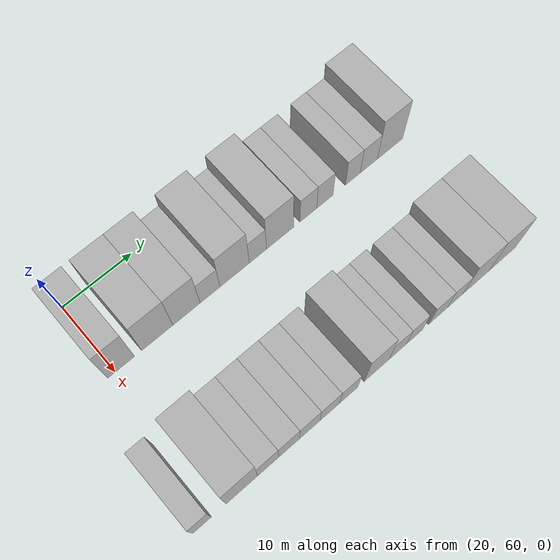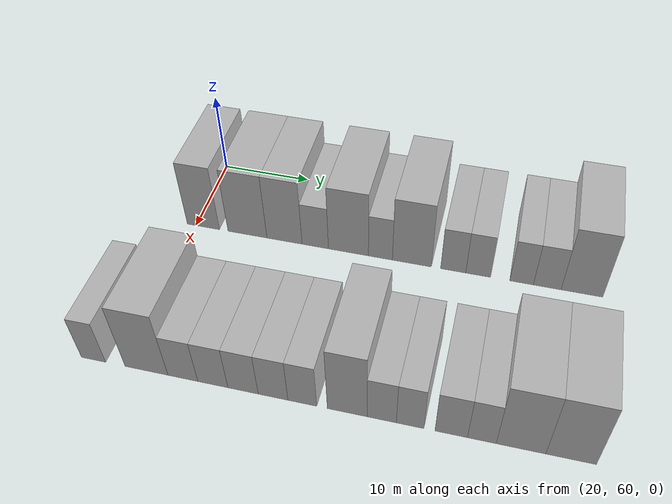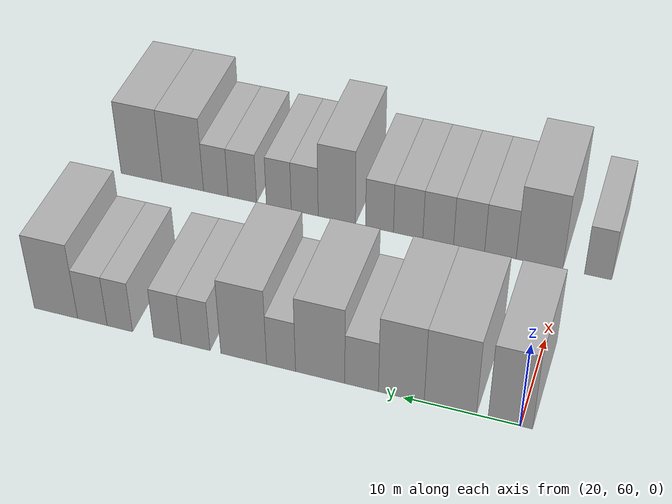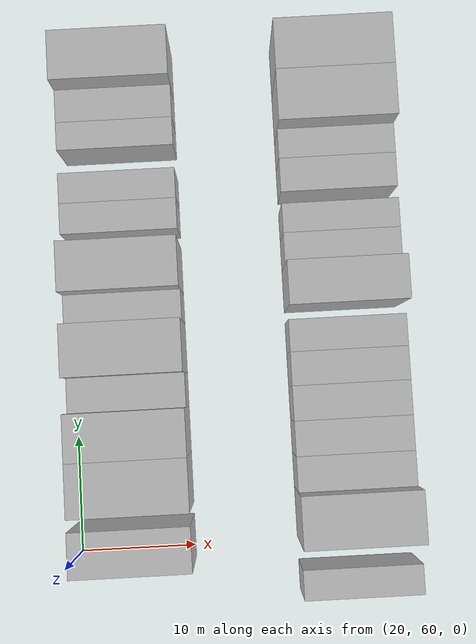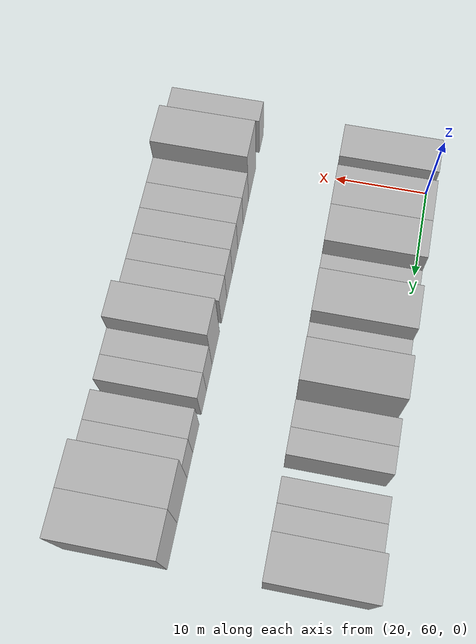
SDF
<sdf version="1.6">
 <world name="default">
  <model name="building_69">
   <static>1</static>
   <pose>25.0000 60.8629 0 0.000000 0.000000 0.000000</pose>
   <link name="link">
    <pose>0 0 4.50 0 0 0</pose>
    <collision name="collision"><geometry><box><size>10.0000 3.7578 9.0000</size></box></geometry></collision>
    <visual name="visual">
     <cast_shadows>0</cast_shadows>
     <geometry><box><size>10.0000 3.7578 9.0000</size></box></geometry>
     <material>
      <script>
       <uri>model://HANNAS_wall/materials/scripts</uri>
       <uri>model://HANNAS_wall/materials/textures</uri>
       <name>vrc/HANNAS_wall</name>
      </script>
     </material>
    </visual>
   </link>
  </model>
  <model name="building_70">
   <static>1</static>
   <pose>25.0000 65.9792 0 0.000000 0.000000 0.000000</pose>
   <link name="link">
    <pose>0 0 4.50 0 0 0</pose>
    <collision name="collision"><geometry><box><size>10.0000 4.4748 9.0000</size></box></geometry></collision>
    <visual name="visual">
     <cast_shadows>0</cast_shadows>
     <geometry><box><size>10.0000 4.4748 9.0000</size></box></geometry>
     <material>
      <script>
       <uri>model://HANNAS_wall/materials/scripts</uri>
       <uri>model://HANNAS_wall/materials/textures</uri>
       <name>vrc/HANNAS_wall</name>
      </script>
     </material>
    </visual>
   </link>
  </model>
  <model name="building_71">
   <static>1</static>
   <pose>25.0000 70.2125 0 0.000000 0.000000 0.000000</pose>
   <link name="link">
    <pose>0 0 4.50 0 0 0</pose>
    <collision name="collision"><geometry><box><size>10.0000 3.9920 9.0000</size></box></geometry></collision>
    <visual name="visual">
     <cast_shadows>0</cast_shadows>
     <geometry><box><size>10.0000 3.9920 9.0000</size></box></geometry>
     <material>
      <script>
       <uri>model://HANNAS_wall/materials/scripts</uri>
       <uri>model://HANNAS_wall/materials/textures</uri>
       <name>vrc/HANNAS_wall</name>
      </script>
     </material>
    </visual>
   </link>
  </model>
  <model name="building_72">
   <static>1</static>
   <pose>25.0000 73.6860 0 0.000000 0.000000 0.000000</pose>
   <link name="link">
    <pose>0 0 3.00 0 0 0</pose>
    <collision name="collision"><geometry><box><size>10.0000 2.9551 6.0000</size></box></geometry></collision>
    <visual name="visual">
     <cast_shadows>0</cast_shadows>
     <geometry><box><size>10.0000 2.9551 6.0000</size></box></geometry>
     <material>
      <script>
       <uri>model://HANNAS_wall/materials/scripts</uri>
       <uri>model://HANNAS_wall/materials/textures</uri>
       <name>vrc/HANNAS_wall</name>
      </script>
     </material>
    </visual>
   </link>
  </model>
  <model name="building_73">
   <static>1</static>
   <pose>25.0000 77.3715 0 0.000000 0.000000 0.000000</pose>
   <link name="link">
    <pose>0 0 4.50 0 0 0</pose>
    <collision name="collision"><geometry><box><size>10.0000 4.4159 9.0000</size></box></geometry></collision>
    <visual name="visual">
     <cast_shadows>0</cast_shadows>
     <geometry><box><size>10.0000 4.4159 9.0000</size></box></geometry>
     <material>
      <script>
       <uri>model://HANNAS_wall/materials/scripts</uri>
       <uri>model://HANNAS_wall/materials/textures</uri>
       <name>vrc/HANNAS_wall</name>
      </script>
     </material>
    </visual>
   </link>
  </model>
  <model name="building_74">
   <static>1</static>
   <pose>25.0000 80.8892 0 0.000000 0.000000 0.000000</pose>
   <link name="link">
    <pose>0 0 3.00 0 0 0</pose>
    <collision name="collision"><geometry><box><size>10.0000 2.6195 6.0000</size></box></geometry></collision>
    <visual name="visual">
     <cast_shadows>0</cast_shadows>
     <geometry><box><size>10.0000 2.6195 6.0000</size></box></geometry>
     <material>
      <script>
       <uri>model://HANNAS_wall/materials/scripts</uri>
       <uri>model://HANNAS_wall/materials/textures</uri>
       <name>vrc/HANNAS_wall</name>
      </script>
     </material>
    </visual>
   </link>
  </model>
  <model name="building_75">
   <static>1</static>
   <pose>25.0000 84.2985 0 0.000000 0.000000 0.000000</pose>
   <link name="link">
    <pose>0 0 4.50 0 0 0</pose>
    <collision name="collision"><geometry><box><size>10.0000 4.1991 9.0000</size></box></geometry></collision>
    <visual name="visual">
     <cast_shadows>0</cast_shadows>
     <geometry><box><size>10.0000 4.1991 9.0000</size></box></geometry>
     <material>
      <script>
       <uri>model://HANNAS_wall/materials/scripts</uri>
       <uri>model://HANNAS_wall/materials/textures</uri>
       <name>vrc/HANNAS_wall</name>
      </script>
     </material>
    </visual>
   </link>
  </model>
  <model name="building_76">
   <static>1</static>
   <pose>25.0000 88.7278 0 0.000000 0.000000 0.000000</pose>
   <link name="link">
    <pose>0 0 3.00 0 0 0</pose>
    <collision name="collision"><geometry><box><size>10.0000 2.6595 6.0000</size></box></geometry></collision>
    <visual name="visual">
     <cast_shadows>0</cast_shadows>
     <geometry><box><size>10.0000 2.6595 6.0000</size></box></geometry>
     <material>
      <script>
       <uri>model://HANNAS_wall/materials/scripts</uri>
       <uri>model://HANNAS_wall/materials/textures</uri>
       <name>vrc/HANNAS_wall</name>
      </script>
     </material>
    </visual>
   </link>
  </model>
  <model name="building_77">
   <static>1</static>
   <pose>25.0000 91.3631 0 0.000000 0.000000 0.000000</pose>
   <link name="link">
    <pose>0 0 3.00 0 0 0</pose>
    <collision name="collision"><geometry><box><size>10.0000 2.6112 6.0000</size></box></geometry></collision>
    <visual name="visual">
     <cast_shadows>0</cast_shadows>
     <geometry><box><size>10.0000 2.6112 6.0000</size></box></geometry>
     <material>
      <script>
       <uri>model://HANNAS_wall/materials/scripts</uri>
       <uri>model://HANNAS_wall/materials/textures</uri>
       <name>vrc/HANNAS_wall</name>
      </script>
     </material>
    </visual>
   </link>
  </model>
  <model name="building_78">
   <static>1</static>
   <pose>25.0000 95.8824 0 0.000000 0.000000 0.000000</pose>
   <link name="link">
    <pose>0 0 3.00 0 0 0</pose>
    <collision name="collision"><geometry><box><size>10.0000 2.4275 6.0000</size></box></geometry></collision>
    <visual name="visual">
     <cast_shadows>0</cast_shadows>
     <geometry><box><size>10.0000 2.4275 6.0000</size></box></geometry>
     <material>
      <script>
       <uri>model://HANNAS_wall/materials/scripts</uri>
       <uri>model://HANNAS_wall/materials/textures</uri>
       <name>vrc/HANNAS_wall</name>
      </script>
     </material>
    </visual>
   </link>
  </model>
  <model name="building_79">
   <static>1</static>
   <pose>25.0000 98.5160 0 0.000000 0.000000 0.000000</pose>
   <link name="link">
    <pose>0 0 3.00 0 0 0</pose>
    <collision name="collision"><geometry><box><size>10.0000 2.8397 6.0000</size></box></geometry></collision>
    <visual name="visual">
     <cast_shadows>0</cast_shadows>
     <geometry><box><size>10.0000 2.8397 6.0000</size></box></geometry>
     <material>
      <script>
       <uri>model://HANNAS_wall/materials/scripts</uri>
       <uri>model://HANNAS_wall/materials/textures</uri>
       <name>vrc/HANNAS_wall</name>
      </script>
     </material>
    </visual>
   </link>
  </model>
  <model name="building_80">
   <static>1</static>
   <pose>25.0000 102.0439 0 0.000000 0.000000 0.000000</pose>
   <link name="link">
    <pose>0 0 4.50 0 0 0</pose>
    <collision name="collision"><geometry><box><size>10.0000 4.2161 9.0000</size></box></geometry></collision>
    <visual name="visual">
     <cast_shadows>0</cast_shadows>
     <geometry><box><size>10.0000 4.2161 9.0000</size></box></geometry>
     <material>
      <script>
       <uri>model://HANNAS_wall/materials/scripts</uri>
       <uri>model://HANNAS_wall/materials/textures</uri>
       <name>vrc/HANNAS_wall</name>
      </script>
     </material>
    </visual>
   </link>
  </model>
  <model name="building_168">
   <static>1</static>
   <pose>44.0000 57.0009 0 0.000000 0.000000 0.000000</pose>
   <link name="link">
    <pose>0 0 3.00 0 0 0</pose>
    <collision name="collision"><geometry><box><size>10.0000 2.5033 6.0000</size></box></geometry></collision>
    <visual name="visual">
     <cast_shadows>0</cast_shadows>
     <geometry><box><size>10.0000 2.5033 6.0000</size></box></geometry>
     <material>
      <script>
       <uri>model://HANNAS_wall/materials/scripts</uri>
       <uri>model://HANNAS_wall/materials/textures</uri>
       <name>vrc/HANNAS_wall</name>
      </script>
     </material>
    </visual>
   </link>
  </model>
  <model name="building_169">
   <static>1</static>
   <pose>44.0000 62.4350 0 0.000000 0.000000 0.000000</pose>
   <link name="link">
    <pose>0 0 4.50 0 0 0</pose>
    <collision name="collision"><geometry><box><size>10.0000 4.3649 9.0000</size></box></geometry></collision>
    <visual name="visual">
     <cast_shadows>0</cast_shadows>
     <geometry><box><size>10.0000 4.3649 9.0000</size></box></geometry>
     <material>
      <script>
       <uri>model://HANNAS_wall/materials/scripts</uri>
       <uri>model://HANNAS_wall/materials/textures</uri>
       <name>vrc/HANNAS_wall</name>
      </script>
     </material>
    </visual>
   </link>
  </model>
  <model name="building_170">
   <static>1</static>
   <pose>44.0000 66.1086 0 0.000000 0.000000 0.000000</pose>
   <link name="link">
    <pose>0 0 3.00 0 0 0</pose>
    <collision name="collision"><geometry><box><size>10.0000 2.9822 6.0000</size></box></geometry></collision>
    <visual name="visual">
     <cast_shadows>0</cast_shadows>
     <geometry><box><size>10.0000 2.9822 6.0000</size></box></geometry>
     <material>
      <script>
       <uri>model://HANNAS_wall/materials/scripts</uri>
       <uri>model://HANNAS_wall/materials/textures</uri>
       <name>vrc/HANNAS_wall</name>
      </script>
     </material>
    </visual>
   </link>
  </model>
  <model name="building_171">
   <static>1</static>
   <pose>44.0000 69.0814 0 0.000000 0.000000 0.000000</pose>
   <link name="link">
    <pose>0 0 3.00 0 0 0</pose>
    <collision name="collision"><geometry><box><size>10.0000 2.9635 6.0000</size></box></geometry></collision>
    <visual name="visual">
     <cast_shadows>0</cast_shadows>
     <geometry><box><size>10.0000 2.9635 6.0000</size></box></geometry>
     <material>
      <script>
       <uri>model://HANNAS_wall/materials/scripts</uri>
       <uri>model://HANNAS_wall/materials/textures</uri>
       <name>vrc/HANNAS_wall</name>
      </script>
     </material>
    </visual>
   </link>
  </model>
  <model name="building_172">
   <static>1</static>
   <pose>44.0000 72.0394 0 0.000000 0.000000 0.000000</pose>
   <link name="link">
    <pose>0 0 3.00 0 0 0</pose>
    <collision name="collision"><geometry><box><size>10.0000 2.9525 6.0000</size></box></geometry></collision>
    <visual name="visual">
     <cast_shadows>0</cast_shadows>
     <geometry><box><size>10.0000 2.9525 6.0000</size></box></geometry>
     <material>
      <script>
       <uri>model://HANNAS_wall/materials/scripts</uri>
       <uri>model://HANNAS_wall/materials/textures</uri>
       <name>vrc/HANNAS_wall</name>
      </script>
     </material>
    </visual>
   </link>
  </model>
  <model name="building_173">
   <static>1</static>
   <pose>44.0000 74.9483 0 0.000000 0.000000 0.000000</pose>
   <link name="link">
    <pose>0 0 3.00 0 0 0</pose>
    <collision name="collision"><geometry><box><size>10.0000 2.8652 6.0000</size></box></geometry></collision>
    <visual name="visual">
     <cast_shadows>0</cast_shadows>
     <geometry><box><size>10.0000 2.8652 6.0000</size></box></geometry>
     <material>
      <script>
       <uri>model://HANNAS_wall/materials/scripts</uri>
       <uri>model://HANNAS_wall/materials/textures</uri>
       <name>vrc/HANNAS_wall</name>
      </script>
     </material>
    </visual>
   </link>
  </model>
  <model name="building_174">
   <static>1</static>
   <pose>44.0000 77.7513 0 0.000000 0.000000 0.000000</pose>
   <link name="link">
    <pose>0 0 3.00 0 0 0</pose>
    <collision name="collision"><geometry><box><size>10.0000 2.7409 6.0000</size></box></geometry></collision>
    <visual name="visual">
     <cast_shadows>0</cast_shadows>
     <geometry><box><size>10.0000 2.7409 6.0000</size></box></geometry>
     <material>
      <script>
       <uri>model://HANNAS_wall/materials/scripts</uri>
       <uri>model://HANNAS_wall/materials/textures</uri>
       <name>vrc/HANNAS_wall</name>
      </script>
     </material>
    </visual>
   </link>
  </model>
  <model name="building_175">
   <static>1</static>
   <pose>44.0000 81.9737 0 0.000000 0.000000 0.000000</pose>
   <link name="link">
    <pose>0 0 4.50 0 0 0</pose>
    <collision name="collision"><geometry><box><size>10.0000 3.7039 9.0000</size></box></geometry></collision>
    <visual name="visual">
     <cast_shadows>0</cast_shadows>
     <geometry><box><size>10.0000 3.7039 9.0000</size></box></geometry>
     <material>
      <script>
       <uri>model://HANNAS_wall/materials/scripts</uri>
       <uri>model://HANNAS_wall/materials/textures</uri>
       <name>vrc/HANNAS_wall</name>
      </script>
     </material>
    </visual>
   </link>
  </model>
  <model name="building_176">
   <static>1</static>
   <pose>44.0000 85.1796 0 0.000000 0.000000 0.000000</pose>
   <link name="link">
    <pose>0 0 3.00 0 0 0</pose>
    <collision name="collision"><geometry><box><size>10.0000 2.7078 6.0000</size></box></geometry></collision>
    <visual name="visual">
     <cast_shadows>0</cast_shadows>
     <geometry><box><size>10.0000 2.7078 6.0000</size></box></geometry>
     <material>
      <script>
       <uri>model://HANNAS_wall/materials/scripts</uri>
       <uri>model://HANNAS_wall/materials/textures</uri>
       <name>vrc/HANNAS_wall</name>
      </script>
     </material>
    </visual>
   </link>
  </model>
  <model name="building_177">
   <static>1</static>
   <pose>44.0000 87.7917 0 0.000000 0.000000 0.000000</pose>
   <link name="link">
    <pose>0 0 3.00 0 0 0</pose>
    <collision name="collision"><geometry><box><size>10.0000 2.5165 6.0000</size></box></geometry></collision>
    <visual name="visual">
     <cast_shadows>0</cast_shadows>
     <geometry><box><size>10.0000 2.5165 6.0000</size></box></geometry>
     <material>
      <script>
       <uri>model://HANNAS_wall/materials/scripts</uri>
       <uri>model://HANNAS_wall/materials/textures</uri>
       <name>vrc/HANNAS_wall</name>
      </script>
     </material>
    </visual>
   </link>
  </model>
  <model name="building_178">
   <static>1</static>
   <pose>44.0000 91.5091 0 0.000000 0.000000 0.000000</pose>
   <link name="link">
    <pose>0 0 3.00 0 0 0</pose>
    <collision name="collision"><geometry><box><size>10.0000 2.9184 6.0000</size></box></geometry></collision>
    <visual name="visual">
     <cast_shadows>0</cast_shadows>
     <geometry><box><size>10.0000 2.9184 6.0000</size></box></geometry>
     <material>
      <script>
       <uri>model://HANNAS_wall/materials/scripts</uri>
       <uri>model://HANNAS_wall/materials/textures</uri>
       <name>vrc/HANNAS_wall</name>
      </script>
     </material>
    </visual>
   </link>
  </model>
  <model name="building_179">
   <static>1</static>
   <pose>44.0000 94.2416 0 0.000000 0.000000 0.000000</pose>
   <link name="link">
    <pose>0 0 3.00 0 0 0</pose>
    <collision name="collision"><geometry><box><size>10.0000 2.5466 6.0000</size></box></geometry></collision>
    <visual name="visual">
     <cast_shadows>0</cast_shadows>
     <geometry><box><size>10.0000 2.5466 6.0000</size></box></geometry>
     <material>
      <script>
       <uri>model://HANNAS_wall/materials/scripts</uri>
       <uri>model://HANNAS_wall/materials/textures</uri>
       <name>vrc/HANNAS_wall</name>
      </script>
     </material>
    </visual>
   </link>
  </model>
  <model name="building_180">
   <static>1</static>
   <pose>44.0000 97.6808 0 0.000000 0.000000 0.000000</pose>
   <link name="link">
    <pose>0 0 4.50 0 0 0</pose>
    <collision name="collision"><geometry><box><size>10.0000 4.3316 9.0000</size></box></geometry></collision>
    <visual name="visual">
     <cast_shadows>0</cast_shadows>
     <geometry><box><size>10.0000 4.3316 9.0000</size></box></geometry>
     <material>
      <script>
       <uri>model://HANNAS_wall/materials/scripts</uri>
       <uri>model://HANNAS_wall/materials/textures</uri>
       <name>vrc/HANNAS_wall</name>
      </script>
     </material>
    </visual>
   </link>
  </model>
  <model name="building_181">
   <static>1</static>
   <pose>44.0000 102.0148 0 0.000000 0.000000 0.000000</pose>
   <link name="link">
    <pose>0 0 4.50 0 0 0</pose>
    <collision name="collision"><geometry><box><size>10.0000 4.3364 9.0000</size></box></geometry></collision>
    <visual name="visual">
     <cast_shadows>0</cast_shadows>
     <geometry><box><size>10.0000 4.3364 9.0000</size></box></geometry>
     <material>
      <script>
       <uri>model://HANNAS_wall/materials/scripts</uri>
       <uri>model://HANNAS_wall/materials/textures</uri>
       <name>vrc/HANNAS_wall</name>
      </script>
     </material>
    </visual>
   </link>
  </model>
 </world>
</sdf>
